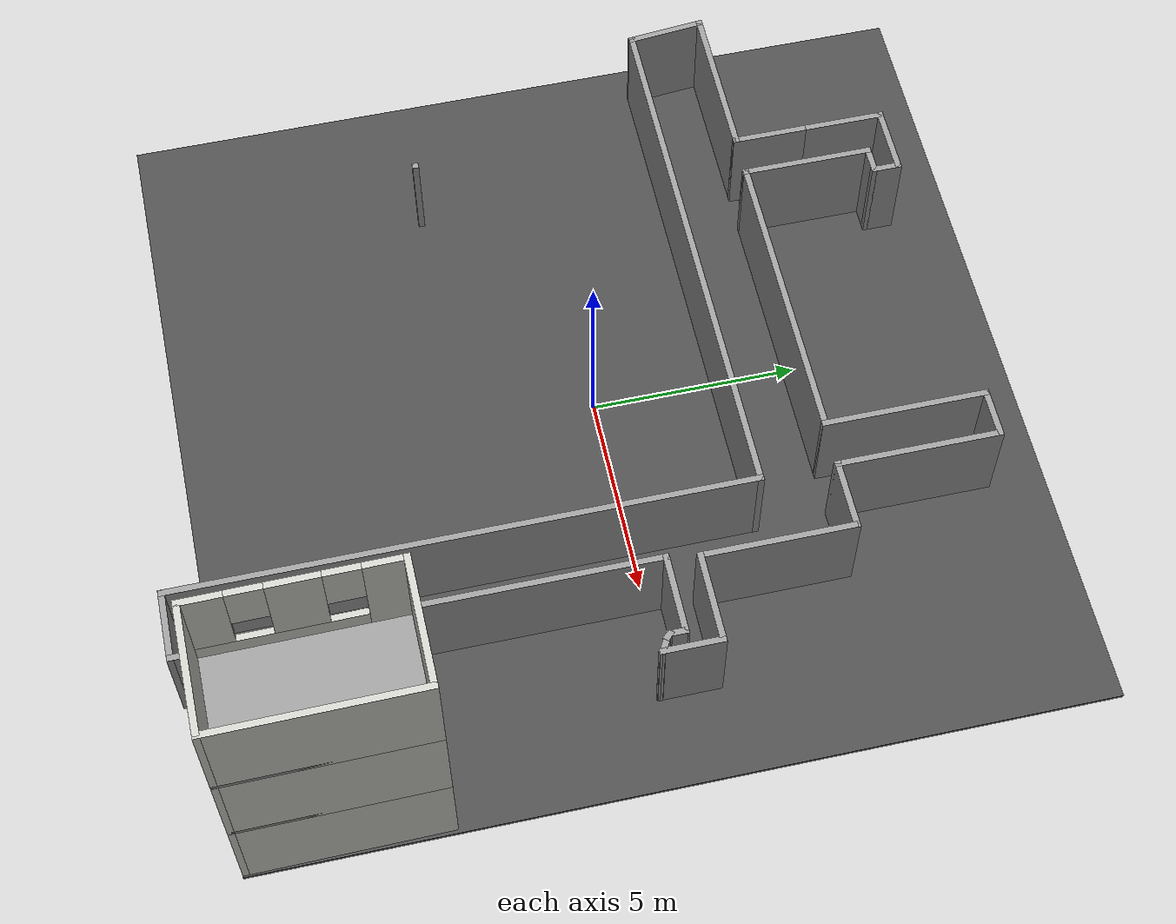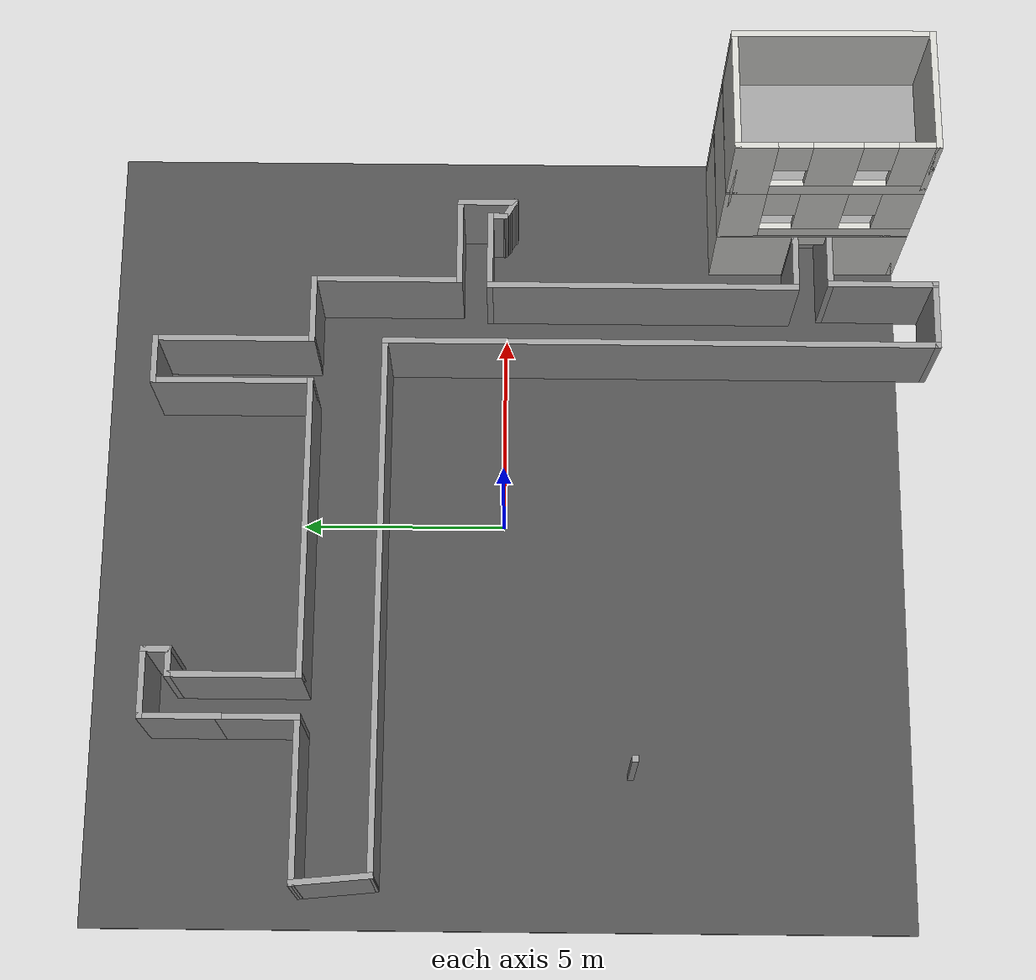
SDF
<sdf version="1.7">
 <world name="default">
  <model name="ground_plane">
   <static>1</static>
   <link name="link">
    <collision name="collision">
     <geometry><plane><normal>0 0 1</normal><size>100 100</size></plane></geometry>
     <surface><friction><ode><mu>100</mu><mu2>50</mu2></ode></friction></surface>
    </collision>
    <visual name="visual">
     <cast_shadows>0</cast_shadows>
     <geometry><plane><normal>0 0 1</normal><size>100 100</size></plane></geometry>
     <material>
      <script><uri>file://media/materials/scripts/gazebo.material</uri><name>Gazebo/Grey</name></script>
     </material>
    </visual>
   </link>
  </model>
  <model name="apt">
   <pose>8.44945 -7.57918 0 0 0 -1.56125</pose>
   <link name="Floor_10">
    <collision name="Floor_10_Collision">
     <geometry><box><size>4.75 3 0.1</size></box></geometry>
     <pose>0 0 0.05 0 -0 0</pose>
    </collision>
    <visual name="Floor_10_Visual">
     <pose>0 0 0.05 0 -0 0</pose>
     <geometry><box><size>4.75 3 0.1</size></box></geometry>
     <material>
      <script><uri>file://media/materials/scripts/gazebo.material</uri><name>Gazebo/Grey</name></script>
      <ambient>1 1 1 1</ambient>
     </material>
     <meta><layer>2</layer></meta>
    </visual>
    <pose>-0 0 5 0 -0 0</pose>
   </link>
   <link name="Floor_9">
    <collision name="Floor_9_Collision">
     <geometry><box><size>4.75 3 0.1</size></box></geometry>
     <pose>0 0 0.05 0 -0 0</pose>
    </collision>
    <visual name="Floor_9_Visual">
     <pose>0 0 0.05 0 -0 0</pose>
     <geometry><box><size>4.75 3 0.1</size></box></geometry>
     <material>
      <script><uri>file://media/materials/scripts/gazebo.material</uri><name>Gazebo/Grey</name></script>
      <ambient>1 1 1 1</ambient>
     </material>
     <meta><layer>1</layer></meta>
    </visual>
    <pose>-0 0 2.5 0 -0 0</pose>
   </link>
   <link name="Wall_1">
    <collision name="Wall_1_Collision">
     <geometry><box><size>3 0.15 2.5</size></box></geometry>
     <pose>0 0 1.25 0 -0 0</pose>
    </collision>
    <visual name="Wall_1_Visual">
     <pose>0 0 1.25 0 -0 0</pose>
     <geometry><box><size>3 0.15 2.5</size></box></geometry>
     <material>
      <script><uri>file://media/materials/scripts/gazebo.material</uri><name>Gazebo/CeilingTiled</name></script>
      <ambient>1 1 1 1</ambient>
     </material>
     <meta><layer>0</layer></meta>
    </visual>
    <pose>-2.3 0 0 0 -0 -1.5708</pose>
   </link>
   <link name="Wall_2">
    <pose>-0 -1.425 0 0 -0 0</pose>
    <visual name="Wall_2_Visual_0">
     <pose>-1.4125 0 1.25 0 -0 0</pose>
     <geometry><box><size>1.925 0.15 2.5</size></box></geometry>
     <material>
      <script><uri>file://media/materials/scripts/gazebo.material</uri><name>Gazebo/CeilingTiled</name></script>
      <ambient>1 1 1 1</ambient>
     </material>
     <meta><layer>0</layer></meta>
    </visual>
    <collision name="Wall_2_Collision_0">
     <geometry><box><size>1.925 0.15 2.5</size></box></geometry>
     <pose>-1.4125 0 1.25 0 -0 0</pose>
    </collision>
    <visual name="Wall_2_Visual_1">
     <pose>1.4125 0 1.25 0 -0 0</pose>
     <geometry><box><size>1.925 0.15 2.5</size></box></geometry>
     <material>
      <script><uri>file://media/materials/scripts/gazebo.material</uri><name>Gazebo/CeilingTiled</name></script>
      <ambient>1 1 1 1</ambient>
     </material>
     <meta><layer>0</layer></meta>
    </visual>
    <collision name="Wall_2_Collision_1">
     <geometry><box><size>1.925 0.15 2.5</size></box></geometry>
     <pose>1.4125 0 1.25 0 -0 0</pose>
    </collision>
    <visual name="Wall_2_Visual_2">
     <pose>0 0 2.25 0 -0 0</pose>
     <geometry><box><size>0.9 0.15 0.5</size></box></geometry>
     <material>
      <script><uri>file://media/materials/scripts/gazebo.material</uri><name>Gazebo/CeilingTiled</name></script>
      <ambient>1 1 1 1</ambient>
     </material>
     <meta><layer>0</layer></meta>
    </visual>
    <collision name="Wall_2_Collision_2">
     <geometry><box><size>0.9 0.15 0.5</size></box></geometry>
     <pose>0 0 2.25 0 -0 0</pose>
    </collision>
   </link>
   <link name="Wall_3">
    <collision name="Wall_3_Collision">
     <geometry><box><size>3 0.15 2.5</size></box></geometry>
     <pose>0 0 1.25 0 -0 0</pose>
    </collision>
    <visual name="Wall_3_Visual">
     <pose>0 0 1.25 0 -0 0</pose>
     <geometry><box><size>3 0.15 2.5</size></box></geometry>
     <material>
      <script><uri>file://media/materials/scripts/gazebo.material</uri><name>Gazebo/CeilingTiled</name></script>
      <ambient>1 1 1 1</ambient>
     </material>
     <meta><layer>0</layer></meta>
    </visual>
    <pose>2.3 0 0 0 -0 1.5708</pose>
   </link>
   <link name="Wall_4">
    <collision name="Wall_4_Collision">
     <geometry><box><size>4.75 0.15 2.5</size></box></geometry>
     <pose>0 0 1.25 0 -0 0</pose>
    </collision>
    <visual name="Wall_4_Visual">
     <pose>0 0 1.25 0 -0 0</pose>
     <geometry><box><size>4.75 0.15 2.5</size></box></geometry>
     <material>
      <script><uri>file://media/materials/scripts/gazebo.material</uri><name>Gazebo/CeilingTiled</name></script>
      <ambient>1 1 1 1</ambient>
     </material>
     <meta><layer>0</layer></meta>
    </visual>
    <pose>-0 1.425 0 0 -0 3.14159</pose>
   </link>
   <link name="Wall_42">
    <collision name="Wall_42_Collision">
     <geometry><box><size>3 0.15 2.5</size></box></geometry>
     <pose>0 0 1.25 0 -0 0</pose>
    </collision>
    <visual name="Wall_42_Visual">
     <pose>0 0 1.25 0 -0 0</pose>
     <geometry><box><size>3 0.15 2.5</size></box></geometry>
     <material>
      <script><uri>file://media/materials/scripts/gazebo.material</uri><name>Gazebo/CeilingTiled</name></script>
      <ambient>1 1 1 1</ambient>
     </material>
     <meta><layer>1</layer></meta>
    </visual>
    <pose>-2.3 0 2.5 0 -0 -1.5708</pose>
   </link>
   <link name="Wall_43">
    <pose>-0 -1.425 2.5 0 -0 0</pose>
    <visual name="Wall_43_Visual_0">
     <pose>-1.87625 0 1.25 0 -0 0</pose>
     <geometry><box><size>0.9975 0.15 2.5</size></box></geometry>
     <material>
      <script><uri>file://media/materials/scripts/gazebo.material</uri><name>Gazebo/CeilingTiled</name></script>
      <ambient>1 1 1 1</ambient>
     </material>
     <meta><layer>1</layer></meta>
    </visual>
    <collision name="Wall_43_Collision_0">
     <geometry><box><size>0.9975 0.15 2.5</size></box></geometry>
     <pose>-1.87625 0 1.25 0 -0 0</pose>
    </collision>
    <visual name="Wall_43_Visual_1">
     <pose>0.49875 0 0.25 0 -0 0</pose>
     <geometry><box><size>3.7525 0.15 0.5</size></box></geometry>
     <material>
      <script><uri>file://media/materials/scripts/gazebo.material</uri><name>Gazebo/CeilingTiled</name></script>
      <ambient>1 1 1 1</ambient>
     </material>
     <meta><layer>1</layer></meta>
    </visual>
    <collision name="Wall_43_Collision_1">
     <geometry><box><size>3.7525 0.15 0.5</size></box></geometry>
     <pose>0.49875 0 0.25 0 -0 0</pose>
    </collision>
    <visual name="Wall_43_Visual_2">
     <pose>0 0 1.5 0 -0 0</pose>
     <geometry><box><size>1.155 0.15 2</size></box></geometry>
     <material>
      <script><uri>file://media/materials/scripts/gazebo.material</uri><name>Gazebo/CeilingTiled</name></script>
      <ambient>1 1 1 1</ambient>
     </material>
     <meta><layer>1</layer></meta>
    </visual>
    <collision name="Wall_43_Collision_2">
     <geometry><box><size>1.155 0.15 2</size></box></geometry>
     <pose>0 0 1.5 0 -0 0</pose>
    </collision>
    <visual name="Wall_43_Visual_3">
     <pose>1.87625 0 1.5 0 -0 0</pose>
     <geometry><box><size>0.9975 0.15 2</size></box></geometry>
     <material>
      <script><uri>file://media/materials/scripts/gazebo.material</uri><name>Gazebo/CeilingTiled</name></script>
      <ambient>1 1 1 1</ambient>
     </material>
     <meta><layer>1</layer></meta>
    </visual>
    <collision name="Wall_43_Collision_3">
     <geometry><box><size>0.9975 0.15 2</size></box></geometry>
     <pose>1.87625 0 1.5 0 -0 0</pose>
    </collision>
    <visual name="Wall_43_Visual_4">
     <pose>-0.9775 0 1.9 0 -0 0</pose>
     <geometry><box><size>0.8 0.15 1.2</size></box></geometry>
     <material>
      <script><uri>file://media/materials/scripts/gazebo.material</uri><name>Gazebo/CeilingTiled</name></script>
      <ambient>1 1 1 1</ambient>
     </material>
     <meta><layer>1</layer></meta>
    </visual>
    <collision name="Wall_43_Collision_4">
     <geometry><box><size>0.8 0.15 1.2</size></box></geometry>
     <pose>-0.9775 0 1.9 0 -0 0</pose>
    </collision>
    <visual name="Wall_43_Visual_5">
     <pose>0.9775 0 1.9 0 -0 0</pose>
     <geometry><box><size>0.8 0.15 1.2</size></box></geometry>
     <material>
      <script><uri>file://media/materials/scripts/gazebo.material</uri><name>Gazebo/CeilingTiled</name></script>
      <ambient>1 1 1 1</ambient>
     </material>
     <meta><layer>1</layer></meta>
    </visual>
    <collision name="Wall_43_Collision_5">
     <geometry><box><size>0.8 0.15 1.2</size></box></geometry>
     <pose>0.9775 0 1.9 0 -0 0</pose>
    </collision>
   </link>
   <link name="Wall_44">
    <collision name="Wall_44_Collision">
     <geometry><box><size>3 0.15 2.5</size></box></geometry>
     <pose>0 0 1.25 0 -0 0</pose>
    </collision>
    <visual name="Wall_44_Visual">
     <pose>0 0 1.25 0 -0 0</pose>
     <geometry><box><size>3 0.15 2.5</size></box></geometry>
     <material>
      <script><uri>file://media/materials/scripts/gazebo.material</uri><name>Gazebo/CeilingTiled</name></script>
      <ambient>1 1 1 1</ambient>
     </material>
     <meta><layer>1</layer></meta>
    </visual>
    <pose>2.3 0 2.5 0 -0 1.5708</pose>
   </link>
   <link name="Wall_45">
    <collision name="Wall_45_Collision">
     <geometry><box><size>4.75 0.15 2.5</size></box></geometry>
     <pose>0 0 1.25 0 -0 0</pose>
    </collision>
    <visual name="Wall_45_Visual">
     <pose>0 0 1.25 0 -0 0</pose>
     <geometry><box><size>4.75 0.15 2.5</size></box></geometry>
     <material>
      <script><uri>file://media/materials/scripts/gazebo.material</uri><name>Gazebo/CeilingTiled</name></script>
      <ambient>1 1 1 1</ambient>
     </material>
     <meta><layer>1</layer></meta>
    </visual>
    <pose>-0 1.425 2.5 0 -0 3.14159</pose>
   </link>
   <link name="Wall_46">
    <collision name="Wall_46_Collision">
     <geometry><box><size>3 0.15 2.5</size></box></geometry>
     <pose>0 0 1.25 0 -0 0</pose>
    </collision>
    <visual name="Wall_46_Visual">
     <pose>0 0 1.25 0 -0 0</pose>
     <geometry><box><size>3 0.15 2.5</size></box></geometry>
     <material>
      <script><uri>file://media/materials/scripts/gazebo.material</uri><name>Gazebo/CeilingTiled</name></script>
      <ambient>1 1 1 1</ambient>
     </material>
     <meta><layer>2</layer></meta>
    </visual>
    <pose>-2.3 0 5 0 -0 -1.5708</pose>
   </link>
   <link name="Wall_47">
    <pose>-0 -1.425 5 0 -0 0</pose>
    <visual name="Wall_47_Visual_0">
     <pose>-1.87625 0 1.25 0 -0 0</pose>
     <geometry><box><size>0.9975 0.15 2.5</size></box></geometry>
     <material>
      <script><uri>file://media/materials/scripts/gazebo.material</uri><name>Gazebo/CeilingTiled</name></script>
      <ambient>1 1 1 1</ambient>
     </material>
     <meta><layer>2</layer></meta>
    </visual>
    <collision name="Wall_47_Collision_0">
     <geometry><box><size>0.9975 0.15 2.5</size></box></geometry>
     <pose>-1.87625 0 1.25 0 -0 0</pose>
    </collision>
    <visual name="Wall_47_Visual_1">
     <pose>0.49875 0 0.25 0 -0 0</pose>
     <geometry><box><size>3.7525 0.15 0.5</size></box></geometry>
     <material>
      <script><uri>file://media/materials/scripts/gazebo.material</uri><name>Gazebo/CeilingTiled</name></script>
      <ambient>1 1 1 1</ambient>
     </material>
     <meta><layer>2</layer></meta>
    </visual>
    <collision name="Wall_47_Collision_1">
     <geometry><box><size>3.7525 0.15 0.5</size></box></geometry>
     <pose>0.49875 0 0.25 0 -0 0</pose>
    </collision>
    <visual name="Wall_47_Visual_2">
     <pose>0 0 1.5 0 -0 0</pose>
     <geometry><box><size>1.155 0.15 2</size></box></geometry>
     <material>
      <script><uri>file://media/materials/scripts/gazebo.material</uri><name>Gazebo/CeilingTiled</name></script>
      <ambient>1 1 1 1</ambient>
     </material>
     <meta><layer>2</layer></meta>
    </visual>
    <collision name="Wall_47_Collision_2">
     <geometry><box><size>1.155 0.15 2</size></box></geometry>
     <pose>0 0 1.5 0 -0 0</pose>
    </collision>
    <visual name="Wall_47_Visual_3">
     <pose>1.87625 0 1.5 0 -0 0</pose>
     <geometry><box><size>0.9975 0.15 2</size></box></geometry>
     <material>
      <script><uri>file://media/materials/scripts/gazebo.material</uri><name>Gazebo/CeilingTiled</name></script>
      <ambient>1 1 1 1</ambient>
     </material>
     <meta><layer>2</layer></meta>
    </visual>
    <collision name="Wall_47_Collision_3">
     <geometry><box><size>0.9975 0.15 2</size></box></geometry>
     <pose>1.87625 0 1.5 0 -0 0</pose>
    </collision>
    <visual name="Wall_47_Visual_4">
     <pose>-0.9775 0 1.9 0 -0 0</pose>
     <geometry><box><size>0.8 0.15 1.2</size></box></geometry>
     <material>
      <script><uri>file://media/materials/scripts/gazebo.material</uri><name>Gazebo/CeilingTiled</name></script>
      <ambient>1 1 1 1</ambient>
     </material>
     <meta><layer>2</layer></meta>
    </visual>
    <collision name="Wall_47_Collision_4">
     <geometry><box><size>0.8 0.15 1.2</size></box></geometry>
     <pose>-0.9775 0 1.9 0 -0 0</pose>
    </collision>
    <visual name="Wall_47_Visual_5">
     <pose>0.9775 0 1.9 0 -0 0</pose>
     <geometry><box><size>0.8 0.15 1.2</size></box></geometry>
     <material>
      <script><uri>file://media/materials/scripts/gazebo.material</uri><name>Gazebo/CeilingTiled</name></script>
      <ambient>1 1 1 1</ambient>
     </material>
     <meta><layer>2</layer></meta>
    </visual>
    <collision name="Wall_47_Collision_5">
     <geometry><box><size>0.8 0.15 1.2</size></box></geometry>
     <pose>0.9775 0 1.9 0 -0 0</pose>
    </collision>
   </link>
   <link name="Wall_48">
    <collision name="Wall_48_Collision">
     <geometry><box><size>3 0.15 2.5</size></box></geometry>
     <pose>0 0 1.25 0 -0 0</pose>
    </collision>
    <visual name="Wall_48_Visual">
     <pose>0 0 1.25 0 -0 0</pose>
     <geometry><box><size>3 0.15 2.5</size></box></geometry>
     <material>
      <script><uri>file://media/materials/scripts/gazebo.material</uri><name>Gazebo/CeilingTiled</name></script>
      <ambient>1 1 1 1</ambient>
     </material>
     <meta><layer>2</layer></meta>
    </visual>
    <pose>2.3 0 5 0 -0 1.5708</pose>
   </link>
   <link name="Wall_49">
    <collision name="Wall_49_Collision">
     <geometry><box><size>4.75 0.15 2.5</size></box></geometry>
     <pose>0 0 1.25 0 -0 0</pose>
    </collision>
    <visual name="Wall_49_Visual">
     <pose>0 0 1.25 0 -0 0</pose>
     <geometry><box><size>4.75 0.15 2.5</size></box></geometry>
     <material>
      <script><uri>file://media/materials/scripts/gazebo.material</uri><name>Gazebo/CeilingTiled</name></script>
      <ambient>1 1 1 1</ambient>
     </material>
     <meta><layer>2</layer></meta>
    </visual>
    <pose>-0 1.425 5 0 -0 3.14159</pose>
   </link>
   <static>1</static>
  </model>
  <model name="asphalt_plane">
   <static>1</static>
   <link name="link">
    <collision name="collision"><geometry><box><size>20 20 0.1</size></box></geometry></collision>
    <visual name="visual">
     <cast_shadows>0</cast_shadows>
     <geometry><box><size>20 20 0.1</size></box></geometry>
     <material>
      <script>
       <uri>model://asphalt_plane/materials/scripts</uri>
       <uri>model://asphalt_plane/materials/textures</uri>
       <name>vrc/asphalt</name>
      </script>
     </material>
    </visual>
   </link>
   <pose>0.008449 0.055519 0 0 -0 0</pose>
  </model>
  <model name="PATH">
   <pose>-0.674409 -0.99678 0 0 -0 0</pose>
   <link name="Wall_52">
    <collision name="Wall_52_Collision">
     <geometry><box><size>0.15 0.15 2.5</size></box></geometry>
     <pose>0 0 1.25 0 -0 0</pose>
    </collision>
    <visual name="Wall_52_Visual">
     <pose>0 0 1.25 0 -0 0</pose>
     <geometry><box><size>0.15 0.15 2.5</size></box></geometry>
     <material>
      <script><uri>file://media/materials/scripts/gazebo.material</uri><name>Gazebo/Grey</name></script>
      <ambient>1 1 1 1</ambient>
     </material>
     <meta><layer>0</layer></meta>
    </visual>
    <pose>-5.57638 -2.11866 0 0 -0 0</pose>
   </link>
   <link name="Wall_55">
    <collision name="Wall_55_Collision">
     <geometry><box><size>4 0.15 2.5</size></box></geometry>
     <pose>0 0 1.25 0 -0 0</pose>
    </collision>
    <visual name="Wall_55_Visual">
     <pose>0 0 1.25 0 -0 0</pose>
     <geometry><box><size>4 0.15 2.5</size></box></geometry>
     <material>
      <script><uri>file://media/materials/scripts/gazebo.material</uri><name>Gazebo/Grey</name></script>
      <ambient>1 1 1 1</ambient>
     </material>
     <meta><layer>0</layer></meta>
    </visual>
    <pose>-6.58526 5.77714 0 0 -0 0</pose>
   </link>
   <link name="Wall_56">
    <collision name="Wall_56_Collision">
     <geometry><box><size>2 0.15 2.5</size></box></geometry>
     <pose>0 0 1.25 0 -0 0</pose>
    </collision>
    <visual name="Wall_56_Visual">
     <pose>0 0 1.25 0 -0 0</pose>
     <geometry><box><size>2 0.15 2.5</size></box></geometry>
     <material>
      <script><uri>file://media/materials/scripts/gazebo.material</uri><name>Gazebo/Grey</name></script>
      <ambient>1 1 1 1</ambient>
     </material>
     <meta><layer>0</layer></meta>
    </visual>
    <pose>-4.66026 6.70214 0 0 -0 1.5708</pose>
   </link>
   <link name="Wall_57">
    <collision name="Wall_57_Collision">
     <geometry><box><size>2 0.15 2.5</size></box></geometry>
     <pose>0 0 1.25 0 -0 0</pose>
    </collision>
    <visual name="Wall_57_Visual">
     <pose>0 0 1.25 0 -0 0</pose>
     <geometry><box><size>2 0.15 2.5</size></box></geometry>
     <material>
      <script><uri>file://media/materials/scripts/gazebo.material</uri><name>Gazebo/Grey</name></script>
      <ambient>1 1 1 1</ambient>
     </material>
     <meta><layer>0</layer></meta>
    </visual>
    <pose>-4.66026 8.55214 0 0 -0 1.5708</pose>
   </link>
   <link name="Wall_58">
    <collision name="Wall_58_Collision">
     <geometry><box><size>1.75 0.15 2.5</size></box></geometry>
     <pose>0 0 1.25 0 -0 0</pose>
    </collision>
    <visual name="Wall_58_Visual">
     <pose>0 0 1.25 0 -0 0</pose>
     <geometry><box><size>1.75 0.15 2.5</size></box></geometry>
     <material>
      <script><uri>file://media/materials/scripts/gazebo.material</uri><name>Gazebo/Grey</name></script>
      <ambient>1 1 1 1</ambient>
     </material>
     <meta><layer>0</layer></meta>
    </visual>
    <pose>-3.86026 9.47715 0 0 -0 0</pose>
   </link>
   <link name="Wall_59">
    <collision name="Wall_59_Collision">
     <geometry><box><size>0.75 0.15 2.5</size></box></geometry>
     <pose>0 0 1.25 0 -0 0</pose>
    </collision>
    <visual name="Wall_59_Visual">
     <pose>0 0 1.25 0 -0 0</pose>
     <geometry><box><size>0.75 0.15 2.5</size></box></geometry>
     <material>
      <script><uri>file://media/materials/scripts/gazebo.material</uri><name>Gazebo/Grey</name></script>
      <ambient>1 1 1 1</ambient>
     </material>
     <meta><layer>0</layer></meta>
    </visual>
    <pose>-3.06026 9.17714 0 0 -0 -1.5708</pose>
   </link>
   <link name="Wall_60">
    <collision name="Wall_60_Collision">
     <geometry><box><size>0.75 0.15 2.5</size></box></geometry>
     <pose>0 0 1.25 0 -0 0</pose>
    </collision>
    <visual name="Wall_60_Visual">
     <pose>0 0 1.25 0 -0 0</pose>
     <geometry><box><size>0.75 0.15 2.5</size></box></geometry>
     <material>
      <script><uri>file://media/materials/scripts/gazebo.material</uri><name>Gazebo/Grey</name></script>
      <ambient>1 1 1 1</ambient>
     </material>
     <meta><layer>0</layer></meta>
    </visual>
    <pose>-3.36026 8.87715 0 0 -0 3.14159</pose>
   </link>
   <link name="Wall_61">
    <collision name="Wall_61_Collision">
     <geometry><box><size>3.25 0.15 2.5</size></box></geometry>
     <pose>0 0 1.25 0 -0 0</pose>
    </collision>
    <visual name="Wall_61_Visual">
     <pose>0 0 1.25 0 -0 0</pose>
     <geometry><box><size>3.25 0.15 2.5</size></box></geometry>
     <material>
      <script><uri>file://media/materials/scripts/gazebo.material</uri><name>Gazebo/Grey</name></script>
      <ambient>1 1 1 1</ambient>
     </material>
     <meta><layer>0</layer></meta>
    </visual>
    <pose>-3.66026 7.32714 0 0 -0 -1.5708</pose>
   </link>
   <link name="Wall_62">
    <collision name="Wall_62_Collision">
     <geometry><box><size>7.5 0.15 2.5</size></box></geometry>
     <pose>0 0 1.25 0 -0 0</pose>
    </collision>
    <visual name="Wall_62_Visual">
     <pose>0 0 1.25 0 -0 0</pose>
     <geometry><box><size>7.5 0.15 2.5</size></box></geometry>
     <material>
      <script><uri>file://media/materials/scripts/gazebo.material</uri><name>Gazebo/Grey</name></script>
      <ambient>1 1 1 1</ambient>
     </material>
     <meta><layer>0</layer></meta>
    </visual>
    <pose>0.014741 5.77714 0 0 -0 0</pose>
   </link>
   <link name="Wall_63">
    <collision name="Wall_63_Collision">
     <geometry><box><size>4 0.15 2.5</size></box></geometry>
     <pose>0 0 1.25 0 -0 0</pose>
    </collision>
    <visual name="Wall_63_Visual">
     <pose>0 0 1.25 0 -0 0</pose>
     <geometry><box><size>4 0.15 2.5</size></box></geometry>
     <material>
      <script><uri>file://media/materials/scripts/gazebo.material</uri><name>Gazebo/Grey</name></script>
      <ambient>1 1 1 1</ambient>
     </material>
     <meta><layer>0</layer></meta>
    </visual>
    <pose>3.68974 7.70214 0 0 -0 1.5708</pose>
   </link>
   <link name="Wall_64">
    <collision name="Wall_64_Collision">
     <geometry><box><size>1.25 0.15 2.5</size></box></geometry>
     <pose>0 0 1.25 0 -0 0</pose>
    </collision>
    <visual name="Wall_64_Visual">
     <pose>0 0 1.25 0 -0 0</pose>
     <geometry><box><size>1.25 0.15 2.5</size></box></geometry>
     <material>
      <script><uri>file://media/materials/scripts/gazebo.material</uri><name>Gazebo/Grey</name></script>
      <ambient>1 1 1 1</ambient>
     </material>
     <meta><layer>0</layer></meta>
    </visual>
    <pose>4.23974 9.62715 0 0 -0 0</pose>
   </link>
   <link name="Wall_65">
    <collision name="Wall_65_Collision">
     <geometry><box><size>4 0.15 2.5</size></box></geometry>
     <pose>0 0 1.25 0 -0 0</pose>
    </collision>
    <visual name="Wall_65_Visual">
     <pose>0 0 1.25 0 -0 0</pose>
     <geometry><box><size>4 0.15 2.5</size></box></geometry>
     <material>
      <script><uri>file://media/materials/scripts/gazebo.material</uri><name>Gazebo/Grey</name></script>
      <ambient>1 1 1 1</ambient>
     </material>
     <meta><layer>0</layer></meta>
    </visual>
    <pose>4.78974 7.70214 0 0 -0 -1.5708</pose>
   </link>
   <link name="Wall_66">
    <collision name="Wall_66_Collision">
     <geometry><box><size>1.75 0.15 2.5</size></box></geometry>
     <pose>0 0 1.25 0 -0 0</pose>
    </collision>
    <visual name="Wall_66_Visual">
     <pose>0 0 1.25 0 -0 0</pose>
     <geometry><box><size>1.75 0.15 2.5</size></box></geometry>
     <material>
      <script><uri>file://media/materials/scripts/gazebo.material</uri><name>Gazebo/Grey</name></script>
      <ambient>1 1 1 1</ambient>
     </material>
     <meta><layer>0</layer></meta>
    </visual>
    <pose>5.58974 5.77714 0 0 -0 0</pose>
   </link>
   <link name="Wall_67">
    <collision name="Wall_67_Collision">
     <geometry><box><size>3.75 0.15 2.5</size></box></geometry>
     <pose>0 0 1.25 0 -0 0</pose>
    </collision>
    <visual name="Wall_67_Visual">
     <pose>0 0 1.25 0 -0 0</pose>
     <geometry><box><size>3.75 0.15 2.5</size></box></geometry>
     <material>
      <script><uri>file://media/materials/scripts/gazebo.material</uri><name>Gazebo/Grey</name></script>
      <ambient>1 1 1 1</ambient>
     </material>
     <meta><layer>0</layer></meta>
    </visual>
    <pose>6.38974 3.97715 0 0 -0 -1.5708</pose>
   </link>
   <link name="Wall_68">
    <collision name="Wall_68_Collision">
     <geometry><box><size>2.25 0.15 2.5</size></box></geometry>
     <pose>0 0 1.25 0 -0 0</pose>
    </collision>
    <visual name="Wall_68_Visual">
     <pose>0 0 1.25 0 -0 0</pose>
     <geometry><box><size>2.25 0.15 2.5</size></box></geometry>
     <material>
      <script><uri>file://media/materials/scripts/gazebo.material</uri><name>Gazebo/Grey</name></script>
      <ambient>1 1 1 1</ambient>
     </material>
     <meta><layer>0</layer></meta>
    </visual>
    <pose>7.43974 2.17714 0 0 -0 0</pose>
   </link>
   <link name="Wall_69">
    <collision name="Wall_69_Collision">
     <geometry><box><size>1.5 0.15 2.5</size></box></geometry>
     <pose>0 0 1.25 0 -0 0</pose>
    </collision>
    <visual name="Wall_69_Visual">
     <pose>0 0 1.25 0 -0 0</pose>
     <geometry><box><size>1.5 0.15 2.5</size></box></geometry>
     <material>
      <script><uri>file://media/materials/scripts/gazebo.material</uri><name>Gazebo/Grey</name></script>
      <ambient>1 1 1 1</ambient>
     </material>
     <meta><layer>0</layer></meta>
    </visual>
    <pose>8.48974 1.50215 0 0 -0 -1.5708</pose>
   </link>
   <link name="Wall_70">
    <collision name="Wall_70_Collision">
     <geometry><box><size>0.5 0.15 2.5</size></box></geometry>
     <pose>0 0 1.25 0 -0 0</pose>
    </collision>
    <visual name="Wall_70_Visual">
     <pose>0 0 1.25 0 -0 0</pose>
     <geometry><box><size>0.5 0.15 2.5</size></box></geometry>
     <material>
      <script><uri>file://media/materials/scripts/gazebo.material</uri><name>Gazebo/Grey</name></script>
      <ambient>1 1 1 1</ambient>
     </material>
     <meta><layer>0</layer></meta>
    </visual>
    <pose>8.33819 0.914645 0 0 -0 2.61799</pose>
   </link>
   <link name="Wall_71">
    <collision name="Wall_71_Collision">
     <geometry><box><size>0.25 0.15 2.5</size></box></geometry>
     <pose>0 0 1.25 0 -0 0</pose>
    </collision>
    <visual name="Wall_71_Visual">
     <pose>0 0 1.25 0 -0 0</pose>
     <geometry><box><size>0.25 0.15 2.5</size></box></geometry>
     <material>
      <script><uri>file://media/materials/scripts/gazebo.material</uri><name>Gazebo/Grey</name></script>
      <ambient>1 1 1 1</ambient>
     </material>
     <meta><layer>0</layer></meta>
    </visual>
    <pose>8.15128 1.0375 0 0 -0 2.35619</pose>
   </link>
   <link name="Wall_72">
    <collision name="Wall_72_Collision">
     <geometry><box><size>0.5 0.15 2.5</size></box></geometry>
     <pose>0 0 1.25 0 -0 0</pose>
    </collision>
    <visual name="Wall_72_Visual">
     <pose>0 0 1.25 0 -0 0</pose>
     <geometry><box><size>0.5 0.15 2.5</size></box></geometry>
     <material>
      <script><uri>file://media/materials/scripts/gazebo.material</uri><name>Gazebo/Grey</name></script>
      <ambient>1 1 1 1</ambient>
     </material>
     <meta><layer>0</layer></meta>
    </visual>
    <pose>8.11592 1.24786 0 0 -0 1.5708</pose>
   </link>
   <link name="Wall_73">
    <collision name="Wall_73_Collision">
     <geometry><box><size>2 0.15 2.5</size></box></geometry>
     <pose>0 0 1.25 0 -0 0</pose>
    </collision>
    <visual name="Wall_73_Visual">
     <pose>0 0 1.25 0 -0 0</pose>
     <geometry><box><size>2 0.15 2.5</size></box></geometry>
     <material>
      <script><uri>file://media/materials/scripts/gazebo.material</uri><name>Gazebo/Grey</name></script>
      <ambient>1 1 1 1</ambient>
     </material>
     <meta><layer>0</layer></meta>
    </visual>
    <pose>7.19092 1.42286 0 0 -0 3.14159</pose>
   </link>
   <link name="Wall_74">
    <collision name="Wall_74_Collision">
     <geometry><box><size>7.75 0.15 2.5</size></box></geometry>
     <pose>0 0 1.25 0 -0 0</pose>
    </collision>
    <visual name="Wall_74_Visual">
     <pose>0 0 1.25 0 -0 0</pose>
     <geometry><box><size>7.75 0.15 2.5</size></box></geometry>
     <material>
      <script><uri>file://media/materials/scripts/gazebo.material</uri><name>Gazebo/Grey</name></script>
      <ambient>1 1 1 1</ambient>
     </material>
     <meta><layer>0</layer></meta>
    </visual>
    <pose>6.26592 -2.37714 0 0 -0 -1.5708</pose>
   </link>
   <link name="Wall_75">
    <collision name="Wall_75_Collision">
     <geometry><box><size>1.5 0.15 2.5</size></box></geometry>
     <pose>0 0 1.25 0 -0 0</pose>
    </collision>
    <visual name="Wall_75_Visual">
     <pose>0 0 1.25 0 -0 0</pose>
     <geometry><box><size>1.5 0.15 2.5</size></box></geometry>
     <material>
      <script><uri>file://media/materials/scripts/gazebo.material</uri><name>Gazebo/Grey</name></script>
      <ambient>1 1 1 1</ambient>
     </material>
     <meta><layer>0</layer></meta>
    </visual>
    <pose>6.94092 -6.17715 0 0 -0 0</pose>
   </link>
   <link name="Wall_76">
    <collision name="Wall_76_Collision">
     <geometry><box><size>1 0.15 2.5</size></box></geometry>
     <pose>0 0 1.25 0 -0 0</pose>
    </collision>
    <visual name="Wall_76_Visual">
     <pose>0 0 1.25 0 -0 0</pose>
     <geometry><box><size>1 0.15 2.5</size></box></geometry>
     <material>
      <script><uri>file://media/materials/scripts/gazebo.material</uri><name>Gazebo/Grey</name></script>
      <ambient>1 1 1 1</ambient>
     </material>
     <meta><layer>0</layer></meta>
    </visual>
    <pose>8.04092 -6.17715 0 0 -0 0</pose>
   </link>
   <link name="Wall_77">
    <collision name="Wall_77_Collision">
     <geometry><box><size>1 0.15 2.5</size></box></geometry>
     <pose>0 0 1.25 0 -0 0</pose>
    </collision>
    <visual name="Wall_77_Visual">
     <pose>0 0 1.25 0 -0 0</pose>
     <geometry><box><size>1 0.15 2.5</size></box></geometry>
     <material>
      <script><uri>file://media/materials/scripts/gazebo.material</uri><name>Gazebo/Grey</name></script>
      <ambient>1 1 1 1</ambient>
     </material>
     <meta><layer>0</layer></meta>
    </visual>
    <pose>8.46592 -6.60214 0 0 -0 -1.5708</pose>
   </link>
   <link name="Wall_78">
    <collision name="Wall_78_Collision">
     <geometry><box><size>2.25 0.15 2.5</size></box></geometry>
     <pose>0 0 1.25 0 -0 0</pose>
    </collision>
    <visual name="Wall_78_Visual">
     <pose>0 0 1.25 0 -0 0</pose>
     <geometry><box><size>2.25 0.15 2.5</size></box></geometry>
     <material>
      <script><uri>file://media/materials/scripts/gazebo.material</uri><name>Gazebo/Grey</name></script>
      <ambient>1 1 1 1</ambient>
     </material>
     <meta><layer>0</layer></meta>
    </visual>
    <pose>7.41592 -7.02714 0 0 -0 3.14159</pose>
   </link>
   <link name="Wall_79">
    <collision name="Wall_79_Collision">
     <geometry><box><size>2.75 0.15 2.5</size></box></geometry>
     <pose>0 0 1.25 0 -0 0</pose>
    </collision>
    <visual name="Wall_79_Visual">
     <pose>0 0 1.25 0 -0 0</pose>
     <geometry><box><size>2.75 0.15 2.5</size></box></geometry>
     <material>
      <script><uri>file://media/materials/scripts/gazebo.material</uri><name>Gazebo/Grey</name></script>
      <ambient>1 1 1 1</ambient>
     </material>
     <meta><layer>0</layer></meta>
    </visual>
    <pose>6.36592 -8.32714 0 0 -0 -1.5708</pose>
   </link>
   <link name="Wall_80">
    <collision name="Wall_80_Collision">
     <geometry><box><size>1.75 0.15 2.5</size></box></geometry>
     <pose>0 0 1.25 0 -0 0</pose>
    </collision>
    <visual name="Wall_80_Visual">
     <pose>0 0 1.25 0 -0 0</pose>
     <geometry><box><size>1.75 0.15 2.5</size></box></geometry>
     <material>
      <script><uri>file://media/materials/scripts/gazebo.material</uri><name>Gazebo/Grey</name></script>
      <ambient>1 1 1 1</ambient>
     </material>
     <meta><layer>0</layer></meta>
    </visual>
    <pose>5.56592 -9.62715 0 0 -0 3.14159</pose>
   </link>
   <link name="Wall_81">
    <collision name="Wall_81_Collision">
     <geometry><box><size>13.75 0.15 2.5</size></box></geometry>
     <pose>0 0 1.25 0 -0 0</pose>
    </collision>
    <visual name="Wall_81_Visual">
     <pose>0 0 1.25 0 -0 0</pose>
     <geometry><box><size>13.75 0.15 2.5</size></box></geometry>
     <material>
      <script><uri>file://media/materials/scripts/gazebo.material</uri><name>Gazebo/Grey</name></script>
      <ambient>1 1 1 1</ambient>
     </material>
     <meta><layer>0</layer></meta>
    </visual>
    <pose>4.76592 -2.82714 0 0 -0 1.5708</pose>
   </link>
   <link name="Wall_82">
    <collision name="Wall_82_Collision">
     <geometry><box><size>13.25 0.15 2.5</size></box></geometry>
     <pose>0 0 1.25 0 -0 0</pose>
    </collision>
    <visual name="Wall_82_Visual">
     <pose>0 0 1.25 0 -0 0</pose>
     <geometry><box><size>13.25 0.15 2.5</size></box></geometry>
     <material>
      <script><uri>file://media/materials/scripts/gazebo.material</uri><name>Gazebo/Grey</name></script>
      <ambient>1 1 1 1</ambient>
     </material>
     <meta><layer>0</layer></meta>
    </visual>
    <pose>-1.78408 3.97286 0 0 -0 3.14159</pose>
   </link>
   <link name="Wall_83">
    <collision name="Wall_83_Collision">
     <geometry><box><size>1.96287 0.15 2.5</size></box></geometry>
     <pose>0 0 1.25 0 -0 0</pose>
    </collision>
    <visual name="Wall_83_Visual">
     <pose>0 0 1.25 0 -0 0</pose>
     <geometry><box><size>1.96287 0.15 2.5</size></box></geometry>
     <material>
      <script><uri>file://media/materials/scripts/gazebo.material</uri><name>Gazebo/Grey</name></script>
      <ambient>1 1 1 1</ambient>
     </material>
     <meta><layer>0</layer></meta>
    </visual>
    <pose>-8.42217 4.875 0 0 -0 1.66813</pose>
   </link>
   <static>1</static>
  </model>
 </world>
</sdf>
